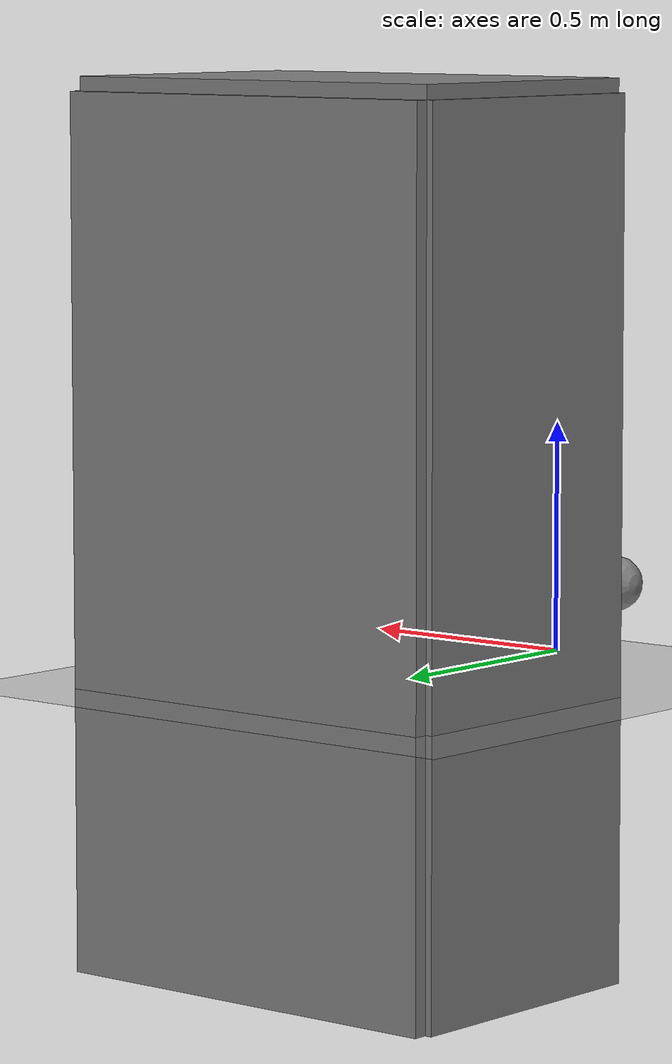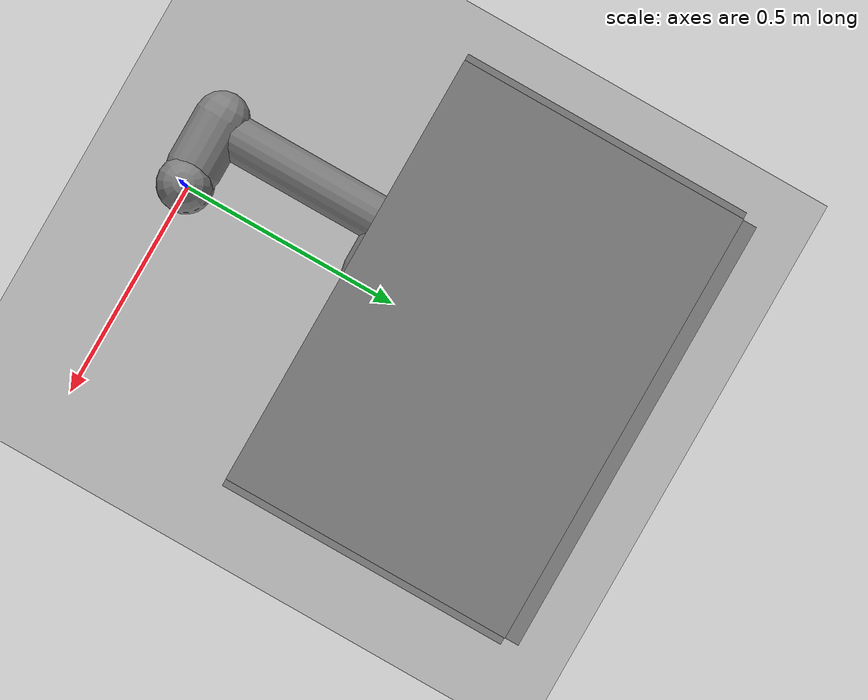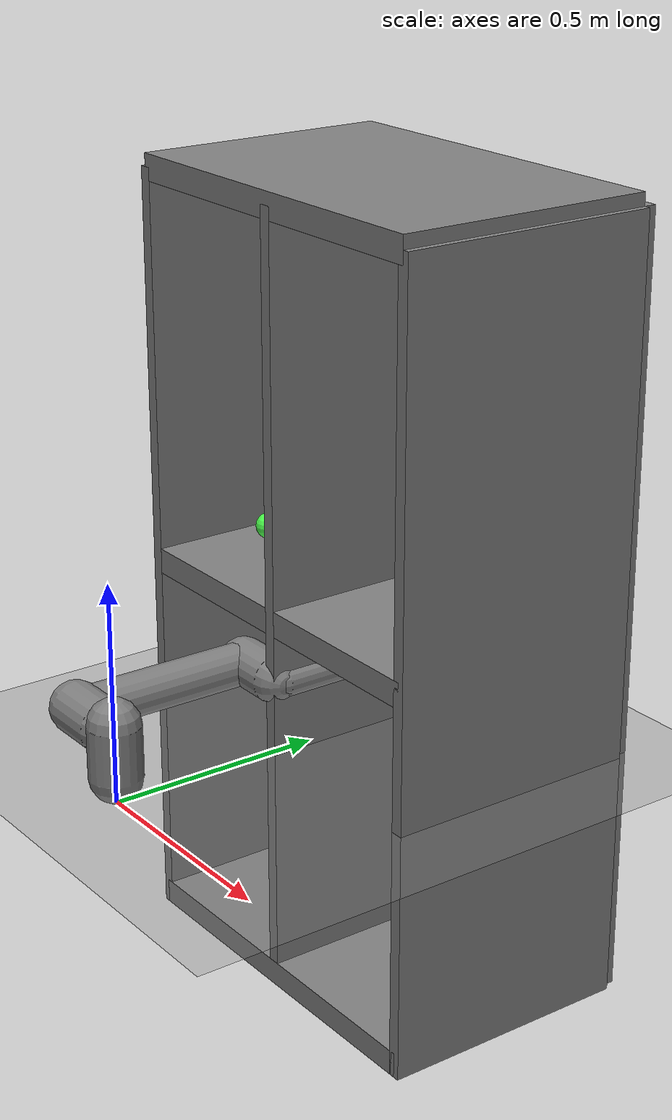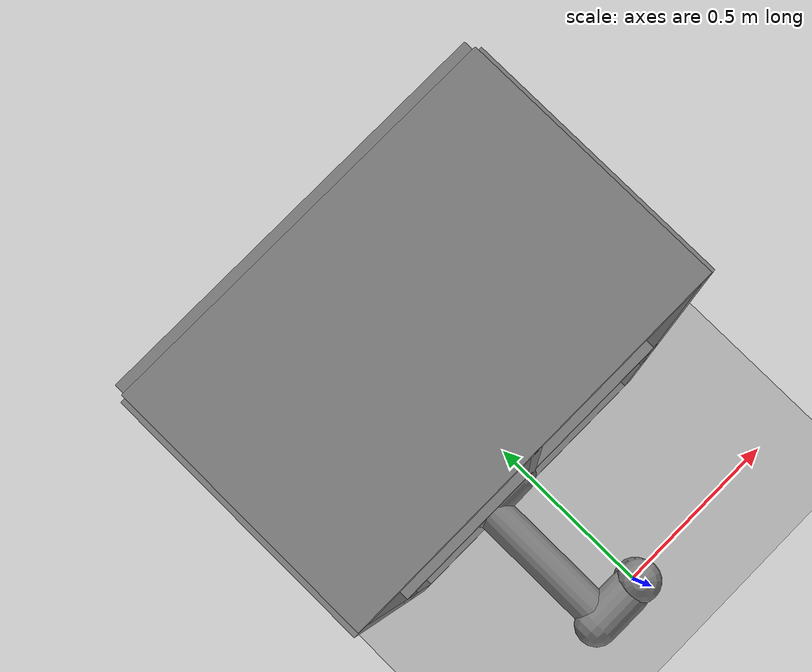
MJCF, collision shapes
<!-- Credit: adapted from Mujoco Menagerie -->
<mujoco model="ur5e">
  <compiler angle="radian" meshdir="universal_robots_ur5e/assets" autolimits="true"/>

  <option integrator="implicitfast"/>

  <default>
    <default class="ur5e">
      <material specular="0.5" shininess="0.25"/>
      <joint axis="0 1 0" range="-6.28319 6.28319" armature="0.1"/>
      <general gaintype="fixed" biastype="affine" ctrlrange="-6.2831 6.2831" gainprm="2000" biasprm="0 -2000 -400"
        forcerange="-150 150"/>
      <default class="size3">
        <default class="size3_limited">
          <joint range="-3.1415 3.1415"/>
          <general ctrlrange="-3.1415 3.1415"/>
        </default>
      </default>
      <default class="size1">
        <general gainprm="500" biasprm="0 -500 -100" forcerange="-28 28"/>
      </default>
      <default class="visual">
        <geom type="mesh" contype="0" conaffinity="0" group="2"/>
      </default>
      <default class="collision">
        <geom type="capsule" group="3"/>
        <default class="eef_collision">
          <geom type="cylinder"/>
        </default>
      </default>
      <site size="0.001" rgba="0.5 0.5 0.5 0.3" group="4"/>
    </default>
  </default>

  <asset>
    <texture builtin="gradient" height="100" rgb1="1 1 1" rgb2="1 1 1" type="skybox" width="100"/>
    <texture builtin="checker" height="100" name="texplane" rgb1="1.0 1.0 1.0" rgb2="1.0 1.0 1.0" type="2d" width="100"/>
    <material name="MatPlane" reflectance="0.5" shininess="1" specular="1" texrepeat="60 60" texture="texplane"/>

    <material class="ur5e" name="black" rgba="0.033 0.033 0.033 1"/>
    <material class="ur5e" name="jointgray" rgba="0.278 0.278 0.278 1"/>
    <material class="ur5e" name="linkgray" rgba="0.82 0.82 0.82 1"/>
    <material class="ur5e" name="urblue" rgba="0.49 0.678 0.8 1"/>

    <mesh file="base_0.obj"/>
    <mesh file="base_1.obj"/>
    <mesh file="shoulder_0.obj"/>
    <mesh file="shoulder_1.obj"/>
    <mesh file="shoulder_2.obj"/>
    <mesh file="upperarm_0.obj"/>
    <mesh file="upperarm_1.obj"/>
    <mesh file="upperarm_2.obj"/>
    <mesh file="upperarm_3.obj"/>
    <mesh file="forearm_0.obj"/>
    <mesh file="forearm_1.obj"/>
    <mesh file="forearm_2.obj"/>
    <mesh file="forearm_3.obj"/>
    <mesh file="wrist1_0.obj"/>
    <mesh file="wrist1_1.obj"/>
    <mesh file="wrist1_2.obj"/>
    <mesh file="wrist2_0.obj"/>
    <mesh file="wrist2_1.obj"/>
    <mesh file="wrist2_2.obj"/>
    <mesh file="wrist3.obj"/>
  </asset>

  <worldbody>

    <light cutoff="100" diffuse="1 1 1" dir="0 1.3 0" directional="true" exponent="1" pos="8 -5.5 8" specular=".1 .1 .1"/>

    <camera name="overview" pos="0.35 -0.7 0.45" xyaxes="1 0.3 0 -0.05 0.05 1" fovy="90"/>
    <body name="base" quat="1 0 0 1" childclass="ur5e">
      <geom mesh="base_0" material="black" class="visual"/>
      <geom mesh="base_1" material="jointgray" class="visual"/>
      <body name="shoulder_link" pos="0 0 0.163">
        <inertial mass="3.7" pos="0 0 0" diaginertia="0.0102675 0.0102675 0.00666"/>
        <joint name="shoulder_pan_joint" class="size3" axis="0 0 1"/>
        <geom mesh="shoulder_0" material="urblue" class="visual"/>
        <geom mesh="shoulder_1" material="black" class="visual"/>
        <geom mesh="shoulder_2" material="jointgray" class="visual"/>
        <geom class="collision" size="0.06 0.06" pos="0 0 -0.04"/>
        <body name="upper_arm_link" pos="0 0.138 0" quat="1 0 1 0">
          <inertial mass="8.393" pos="0 0 0.2125" diaginertia="0.133886 0.133886 0.0151074"/>
          <joint name="shoulder_lift_joint" class="size3"/>
          <geom mesh="upperarm_0" material="linkgray" class="visual"/>
          <geom mesh="upperarm_1" material="black" class="visual"/>
          <geom mesh="upperarm_2" material="jointgray" class="visual"/>
          <geom mesh="upperarm_3" material="urblue" class="visual"/>
          <geom class="collision" pos="0 -0.04 0" quat="1 1 0 0" size="0.06 0.06"/>
          <geom class="collision" size="0.05 0.2" pos="0 0 0.2"/>
          <body name="forearm_link" pos="0 -0.131 0.425">
            <inertial mass="2.275" pos="0 0 0.196" diaginertia="0.0311796 0.0311796 0.004095"/>
            <joint name="elbow_joint" class="size3_limited"/>
            <geom mesh="forearm_0" material="urblue" class="visual"/>
            <geom mesh="forearm_1" material="linkgray" class="visual"/>
            <geom mesh="forearm_2" material="black" class="visual"/>
            <geom mesh="forearm_3" material="jointgray" class="visual"/>
            <geom class="collision" pos="0 0.08 0" quat="1 1 0 0" size="0.055 0.06"/>
            <geom class="collision" size="0.038 0.19" pos="0 0 0.2"/>
            <body name="wrist_1_link" pos="0 0 0.392" quat="1 0 1 0">
              <inertial mass="1.219" pos="0 0.127 0" diaginertia="0.0025599 0.0025599 0.0021942"/>
              <joint name="wrist_1_joint" class="size1"/>
              <geom mesh="wrist1_0" material="black" class="visual"/>
              <geom mesh="wrist1_1" material="urblue" class="visual"/>
              <geom mesh="wrist1_2" material="jointgray" class="visual"/>
              <geom class="collision" pos="0 0.05 0" quat="1 1 0 0" size="0.04 0.07"/>
              <body name="wrist_2_link" pos="0 0.127 0">
                <inertial mass="1.219" pos="0 0 0.1" diaginertia="0.0025599 0.0025599 0.0021942"/>
                <joint name="wrist_2_joint" axis="0 0 1" class="size1"/>
                <geom mesh="wrist2_0" material="black" class="visual"/>
                <geom mesh="wrist2_1" material="urblue" class="visual"/>
                <geom mesh="wrist2_2" material="jointgray" class="visual"/>
                <geom class="collision" size="0.04 0.06" pos="0 0 0.04"/>
                <geom class="collision" pos="0 0.02 0.1" quat="1 1 0 0" size="0.04 0.04"/>
                <body name="wrist_3_link" pos="0 0 0.1">
                  <inertial mass="0.1889" pos="0 0.0771683 0" quat="1 0 0 1"
                    diaginertia="0.000132134 9.90863e-05 9.90863e-05"/>
                  <joint name="wrist_3_joint" class="size1"/>
                  <geom material="linkgray" mesh="wrist3" class="visual"/>
                  <geom class="eef_collision" pos="0 0.08 0" quat="1 1 0 0" size="0.04 0.02"/>
                  <site name="attachment_site" pos="0 0.1 0" quat="-1 1 0 0"/>

                </body>
              </body>
            </body>
          </body>
        </body>
      </body>
    </body>

    <!-- based on the tessco 36 inch wide, 24 inch deep, 72 inch tall storage cabinet -->
    <!-- that's 0.9144 x 0.6096 x 1.8288 meters -->
    <!-- half-dimensions are 0.4572 x 0.3048 x 0.9144 meters -->
    <!-- the shelf's origin is at the floor, in the center of the negative space. -->
    <!-- the shelf's entrance is at y = 0.7 - 0.3048 = ~0.4 -->
    <!-- the shelf's table is at z = -0.6 + 0.9144 = 0.3 -->
    <body name="shelf" pos="0.0 0.7 -0.6">
      <geom name="table"  pos="0.0000  0.0000 0.9144" size="0.4572 0.3048 0.0300" type="box" rgba="0.5 0.5 0.5 1" contype="0" conaffinity="0"/>
      <geom name="bottom" pos="0.0000  0.0000 0.0300" size="0.4572 0.3048 0.0300" type="box" rgba="0.5 0.5 0.5 1" contype="0" conaffinity="0"/>
      <geom name="top"    pos="0.0000  0.0000 1.8288" size="0.4572 0.3048 0.0300" type="box" rgba="0.5 0.5 0.5 1" contype="0" conaffinity="0"/>
      <geom name="bar1"   pos="-0.4572 0.0000 0.9144" size="0.0150 0.3048 0.9144" type="box" rgba="0.5 0.5 0.5 1" contype="0" conaffinity="0"/>
      <geom name="bar2"   pos="0.0000  0.0000 0.9144" size="0.0150 0.3048 0.9144" type="box" rgba="0.5 0.5 0.5 1" contype="0" conaffinity="0"/>
      <geom name="bar3"   pos="0.4572  0.0000 0.9144" size="0.0150 0.3048 0.9144" type="box" rgba="0.5 0.5 0.5 1" contype="0" conaffinity="0"/>
      <geom name="back"   pos="0.0000  0.3048 0.9144" size="0.4572 0.0300 0.9144" type="box" rgba="0.5 0.5 0.5 1" contype="0" conaffinity="0"/>
    </body>

    <body name="goal_marker" pos="-0.3 0.6 0.4" gravcomp="1">
      <freejoint/>
      <geom name="goal_marker_geom" size="0.03" type="sphere" rgba="0.3 1 0.3 1" contype="0" conaffinity="0"/>
    </body>

    <body name="tablelink" pos="0 .2 0">
        <geom name="table_geom" group="4" pos="0.0 0.0 0.0" size="2.8 2.4 0.1" type="plane" mass="10" friction="0.2 0.005 0.0001" contype="0" conaffinity="0"/>
    </body>
  </worldbody>

  <actuator>
    <general class="size3" name="shoulder_pan" joint="shoulder_pan_joint"/>
    <general class="size3" name="shoulder_lift" joint="shoulder_lift_joint"/>
    <general class="size3_limited" name="elbow" joint="elbow_joint"/>
    <general class="size1" name="wrist_1" joint="wrist_1_joint"/>
    <general class="size1" name="wrist_2" joint="wrist_2_joint"/>
    <general class="size1" name="wrist_3" joint="wrist_3_joint"/>
  </actuator>
</mujoco>
